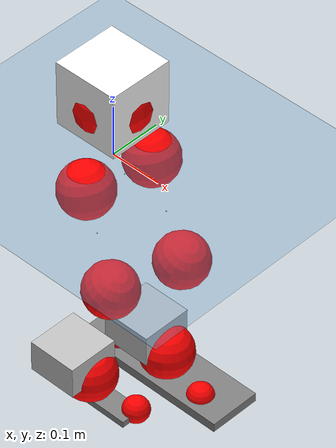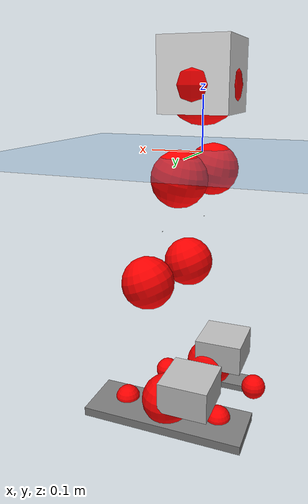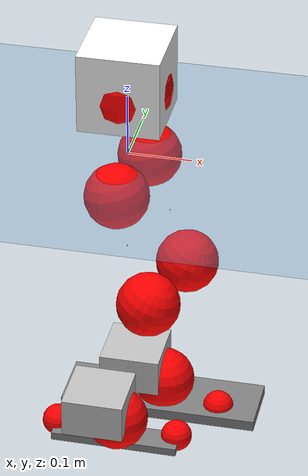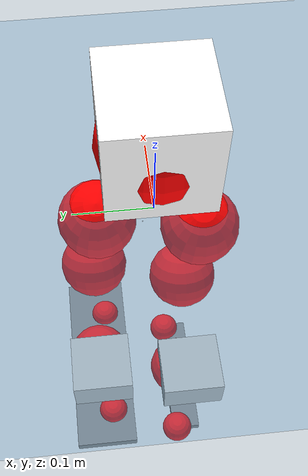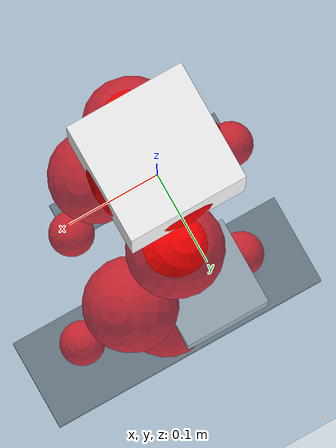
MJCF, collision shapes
<mujoco model="pi_12dof_release_v1">
  <compiler angle="radian" assetdir="assets" balanceinertia="true" inertiafromgeom="false"/>

  <option timestep="0.005" density="1.2" viscosity="2e-05"/>

  <size nkey="1"/>

  <visual>
    <quality shadowsize="8192"/>
    <map shadowclip="0.5"/>
  </visual>

  <default>
    <default class="/">
      <joint armature="0.01" damping="0.01" frictionloss="0.01"/>
      <geom contype="0" conaffinity="0" group="1" solref="-1000 -80"/>
      <site size="0.01 0.005 0.005" group="5"/>
      <general forcelimited="true" biastype="affine" gainprm="20" biasprm="0 -20 -0.5"/>
      <default class="foot">
        <geom size="0.0845 0.036 0.005" type="box" condim="6" group="4" priority="1" friction="0.9 0.2 0.2" solimp="0.015 1 0.005"/>
      </default>
      <default class="reward_collision_sphere">
        <geom group="5" rgba="1 0 0 1"/>
      </default>
    </default>
  </default>

  <asset>
    <texture type="skybox" colorspace="auto" name="//unnamed_texture_0" builtin="gradient" rgb1="0.95 0.95 0.95" rgb2="0.95 0.95 0.95" width="100" height="600"/>
    <texture type="2d" colorspace="auto" name="texplane" builtin="checker" rgb1="0.345 0.575 0.748" rgb2="0.345 0.575 0.748" markrgb="1 1 1" width="512" height="512"/>
    <material name="MatPlane" class="/" texture="texplane" texuniform="true" texrepeat="2 2" specular="0.9"/>
    <mesh name="baselink_1" class="/" file="baselink_1.STL"/>
    <mesh name="r_hip_pitch_link" class="/" file="r_hip_pitch_link.STL"/>
    <mesh name="r_hip_roll_link" class="/" file="r_hip_roll_link.STL"/>
    <mesh name="r_thigh_link" class="/" file="r_thigh_link.STL"/>
    <mesh name="r_calf_link" class="/" file="r_calf_link.STL"/>
    <mesh name="r_ankle_pitch_link" class="/" file="r_ankle_pitch_link.STL"/>
    <mesh name="r_ankle_roll_link" class="/" file="r_ankle_roll_link.STL"/>
    <mesh name="l_hip_pitch_link" class="/" file="l_hip_pitch_link.STL"/>
    <mesh name="l_hip_roll_link" class="/" file="l_hip_roll_link.STL"/>
    <mesh name="l_thigh_link" class="/" file="l_thigh_link.STL"/>
    <mesh name="l_calf_link" class="/" file="l_calf_link.STL"/>
    <mesh name="l_ankle_pitch_link" class="/" file="l_ankle_pitch_link.STL"/>
    <mesh name="l_ankle_roll_link" class="/" file="l_ankle_roll_link.STL"/>
  </asset>

  <worldbody>
    <geom name="floor" class="/" size="100 100 0.125" type="plane" group="0" material="MatPlane"/>
    <light name="toplight_shadow" class="/" pos="0 0 5" dir="0.0990148 0.0990148 -0.990148" type="directional" ambient="0.04 0.04 0.04" diffuse="0.55 0.55 0.55" specular="0.12 0.12 0.12"/>
    <light name="toplight_fill" class="/" pos="0 0 5" dir="0.0990148 0.0990148 -0.990148" type="directional" castshadow="false" ambient="0.04 0.04 0.04" diffuse="0.3 0.3 0.3" specular="0.08 0.08 0.08"/>
    <body name="trunk" pos="0.000112047 -0.00104228 0.00802677" quat="1 -6.17269e-05 9.07092e-05 6.39146e-05">
      <inertial pos="0.0126993 0.010698 0.0578921" quat="0.701304 0.00764751 0.025839 0.712353" mass="4.40782" diaginertia="0.0538222 0.00224011 0.0327234"/>
      <joint name="//unnamed_joint_0" type="free"/>
      <geom name="//unnamed_geom_1" class="/" type="mesh" density="0" rgba="1 1 1 1" mesh="baselink_1"/>
      <geom name="//unnamed_geom_2" class="/" size="0.0633478 0.0633478 0.0633478" pos="0 0 0.12439" type="box" rgba="1 1 1 1"/>
      <geom name="//unnamed_geom_3" class="reward_collision_sphere" size="0.0696826" pos="0 0 0.108841"/>
      <site name="imu" class="/" pos="0.0642932 0.00353096 -0.0534041" size="0.0126696"/>
      <camera name="track" class="/" pos="0 -1.55719 0" quat="0.707107 0.707107 0 0" mode="trackcom"/>
      <camera name="ego_camera" class="/" pos="0.110055 0 0.279878" quat="-0.5 -0.5 0.5 0.5"/>
      <body name="r_hip_pitch_link" pos="-0.00139631 -0.0139735 -0.0507348" quat="0.992353 -0.00162073 -0.123406 0.00175145">
        <inertial pos="-0.00958504 -0.0374529 -0.00094717" quat="-0.0135933 0.725148 -0.008578 0.688405" mass="0.847517" diaginertia="0.000835455 2.72189e-05 0.000713545"/>
        <joint name="r_hip_pitch_joint" class="/" pos="0 0 0" axis="-0.0438675 -0.99778 0.0501025" range="-1.72599 1.48341" armature="0.0160235" damping="0.0743196" frictionloss="0.0150395"/>
        <geom name="//unnamed_geom_4" class="/" type="mesh" density="0" rgba="0.75294 0.75294 0.75294 1" mesh="r_hip_pitch_link"/>
        <geom name="//unnamed_geom_5" class="/" size="0.000633478 0.000633478 0.000633478" type="box" rgba="0.75294 0.75294 0.75294 1"/>
        <body name="r_hip_roll_link" pos="-0.00181785 -0.0444472 0.00305938" quat="1 0.000392935 -0.000183096 -0.000156005">
          <inertial pos="-0.00720501 0.000622488 -0.105805" quat="0.704906 -0.0694323 -0.0730585 0.702103" mass="0.725798" diaginertia="0.00261055 7.99736e-05 0.00119394"/>
          <joint name="r_hip_roll_joint" class="/" pos="0 0 0" axis="-0.998003 0.0225572 -0.0590032" stiffness="0.00930964" range="0.100834 0.416802" armature="0.0157915" damping="0.00878359" frictionloss="0.00724377"/>
          <geom name="//unnamed_geom_6" class="/" type="mesh" density="0" rgba="0.75294 0.75294 0.75294 1" mesh="r_hip_roll_link"/>
          <geom name="//unnamed_geom_7" class="/" size="0.000633478 0.000633478 0.000633478" type="box" rgba="0.75294 0.75294 0.75294 1"/>
          <geom name="//unnamed_geom_8" class="reward_collision_sphere" size="0.0506782"/>
          <body name="r_thigh_link" pos="-0.00994145 0.00990988 -0.0947336" quat="0.999989 -0.0045297 -0.000559119 -0.00131512">
            <inertial pos="0.00236587 0.000704142 -0.0715847" quat="0.738435 0.674209 0.00396634 0.0118082" mass="0.244025" diaginertia="0.000912365 2.71944e-05 0.000580724"/>
            <joint name="r_thigh_joint" class="/" pos="0 0 0" axis="-0.0347665 -0.0113248 -0.999331" range="-0.378524 0.516979" armature="0.0126608" damping="0" frictionloss="0.0119802"/>
            <geom name="//unnamed_geom_9" class="/" type="mesh" density="0" rgba="0.75294 0.75294 0.75294 1" mesh="r_thigh_link"/>
            <geom name="//unnamed_geom_10" class="/" size="0.000633478 0.000633478 0.000633478" type="box" rgba="0.75294 0.75294 0.75294 1"/>
            <body name="r_calf_link" pos="0.00738426 -0.0023956 -0.108263" quat="0.947388 0.000189169 0.320087 0.000541911">
              <inertial pos="-0.0109473 -0.000380202 -0.108215" quat="0.999979 -0.00148511 0.00616585 0.00157805" mass="1.55287" diaginertia="0.0231773 0.000838516 0.00145588"/>
              <joint name="r_calf_joint" class="/" pos="0 0 0" axis="0.039143 -0.999233 0.00111007" stiffness="0.00666394" range="-1.66079 0.523402" armature="0.0174593" damping="0" frictionloss="0.0162013"/>
              <geom name="//unnamed_geom_11" class="/" type="mesh" density="0" rgba="0.75294 0.75294 0.75294 1" mesh="r_calf_link"/>
              <geom name="//unnamed_geom_12" class="/" size="0.000633478 0.000633478 0.000633478" type="box" rgba="0.75294 0.75294 0.75294 1"/>
              <geom name="//unnamed_geom_13" class="reward_collision_sphere" size="0.0506782"/>
              <body name="r_ankle_pitch_link" pos="0.00481936 -0.0114877 -0.212063" quat="0.979939 0.000684255 -0.199295 1.72893e-05">
                <inertial pos="0.00669746 0.00185085 -0.000251264" quat="0.0420199 0.728159 -0.0130489 0.683995" mass="0.456304" diaginertia="0.00232851 6.415e-05 0.00113086"/>
                <joint name="r_ankle_pitch_joint" class="/" pos="0 0 0" axis="-0.00673167 -0.99994 0.00861707" stiffness="0.0406604" range="-1.25189 0.471354" armature="0.0137208" damping="0.0625444" frictionloss="0.012865"/>
                <geom name="//unnamed_geom_14" class="/" type="mesh" density="0" rgba="0.75294 0.75294 0.75294 1" mesh="r_ankle_pitch_link"/>
                <geom name="//unnamed_geom_15" class="/" size="0.0494113 0.0506782 0.0316739" type="box" rgba="0.75294 0.75294 0.75294 1"/>
                <body name="r_ankle_roll_link" pos="0.0996424 0.014224 -0.0043667" quat="1 2.90213e-05 3.29796e-05 -1.47725e-05">
                  <inertial pos="-0.0363742 -0.000350844 -0.0340299" quat="0.547854 0.440028 0.413052 0.579327" mass="1.05665" diaginertia="0.00882155 0.000326721 0.00257157"/>
                  <joint name="r_ankle_roll_joint" class="/" pos="0 0 0" axis="-0.999977 0.0056294 -0.00380663" range="0.00151563 0.0648705" armature="0.010638" damping="0.064257" frictionloss="0.00613907"/>
                  <geom name="//unnamed_geom_16" class="/" type="mesh" density="0" rgba="0.75294 0.75294 0.75294 1" mesh="r_ankle_roll_link"/>
                  <geom name="//unnamed_geom_17" class="/" type="mesh" rgba="0.75294 0.75294 0.75294 1" mesh="r_ankle_roll_link"/>
                  <geom name="right_foot" class="foot" size="0.103115 0.0230823 0.0066047" pos="-0.0748371 0 -0.0684146"/>
                  <geom name="//unnamed_geom_19" class="reward_collision_sphere" size="0.0506782" pos="-0.0733697 0 -0.0310975"/>
                  <geom name="//unnamed_geom_20" class="reward_collision_sphere" size="0.0253391" pos="0.0220109 0.0155719 -0.062195"/>
                  <geom name="//unnamed_geom_21" class="reward_collision_sphere" size="0.0253391" pos="-0.176087 0.0155719 -0.062195"/>
                  <site name="right_foot" class="foot" pos="-0.0748371 0 -0.0684146" size="0.0126696"/>
                </body>
              </body>
            </body>
          </body>
        </body>
      </body>
      <body name="l_hip_pitch_link" pos="0.012553 0.0133183 -0.0513518" quat="0.992201 -0.00086119 -0.124643 0.00118451">
        <inertial pos="-0.00381627 0.0311588 0.000168319" quat="-0.0260136 0.714546 0.0589844 0.696612" mass="0.795517" diaginertia="0.00102997 2.86483e-05 0.00116915"/>
        <joint name="l_hip_pitch_joint" class="/" pos="0 0 0" axis="-0.0371694 0.999021 -0.0239882" stiffness="0.0141209" range="-1.02726 1.73156" armature="0.00513664" damping="0.0648961" frictionloss="0.0135456"/>
        <geom name="//unnamed_geom_22" class="/" type="mesh" density="0" rgba="0.75294 0.75294 0.75294 1" mesh="l_hip_pitch_link"/>
        <geom name="//unnamed_geom_23" class="/" size="0.000633478 0.000633478 0.000633478" type="box" rgba="0.75294 0.75294 0.75294 1"/>
        <body name="l_hip_roll_link" pos="0.00736499 0.0577824 0.00225907" quat="1 0.000189263 -0.000147214 0.000238533">
          <inertial pos="-0.000631521 -0.00934594 -0.0936835" quat="0.699485 -0.0756812 -0.0767016 0.706478" mass="0.784001" diaginertia="0.00224464 8.58971e-05 0.00111711"/>
          <joint name="l_hip_roll_joint" class="/" pos="0 0 0" axis="-0.998028 0.0296544 -0.0553313" range="-0.753397 -0.0329197" armature="0.0119842" damping="0.0229955" frictionloss="0.0194305"/>
          <geom name="//unnamed_geom_24" class="/" type="mesh" density="0" rgba="0.75294 0.75294 0.75294 1" mesh="l_hip_roll_link"/>
          <geom name="//unnamed_geom_25" class="/" size="0.000633478 0.000633478 0.000633478" type="box" rgba="0.75294 0.75294 0.75294 1"/>
          <geom name="//unnamed_geom_26" class="reward_collision_sphere" size="0.0506782"/>
          <body name="l_thigh_link" pos="0.00748796 3.95379e-05 -0.103637" quat="0.999998 -0.000198617 0.0017239 -0.00132971">
            <inertial pos="0.000356249 0.00172554 -0.0755861" quat="0.704412 0.707691 0.0424678 -0.0342751" mass="0.232924" diaginertia="0.000870959 2.74222e-05 0.000622534"/>
            <joint name="l_thigh_joint" class="/" pos="0 0 0" axis="0.0201424 -0.0069721 -0.999773" range="-0.465505 0.153623" armature="0.00929059" damping="0.0559715" frictionloss="0.00808834"/>
            <geom name="//unnamed_geom_27" class="/" type="mesh" density="0" rgba="0.75294 0.75294 0.75294 1" mesh="l_thigh_link"/>
            <geom name="//unnamed_geom_28" class="/" size="0.000633478 0.000633478 0.000633478" type="box" rgba="0.75294 0.75294 0.75294 1"/>
            <body name="l_calf_link" pos="0.000789215 0.0112146 -0.10429" quat="0.948824 -0.00155519 0.315795 -0.00208617">
              <inertial pos="0.0118396 0.00144624 -0.118762" quat="0.999964 -0.0054188 0.00420492 -0.00508208" mass="1.77856" diaginertia="0.0261181 0.00106767 0.00195993"/>
              <joint name="l_calf_joint" class="/" pos="0 0 0" axis="0.0169452 0.999785 -0.0119351" stiffness="0.0165525" range="-0.732454 1.92736" armature="0.0189557" damping="0.00357501" frictionloss="0.0195141"/>
              <geom name="//unnamed_geom_29" class="/" type="mesh" density="0" rgba="0.75294 0.75294 0.75294 1" mesh="l_calf_link"/>
              <geom name="//unnamed_geom_30" class="/" size="0.000633478 0.000633478 0.000633478" type="box" rgba="0.75294 0.75294 0.75294 1"/>
              <geom name="//unnamed_geom_31" class="reward_collision_sphere" size="0.0506782"/>
              <body name="l_ankle_pitch_link" pos="0.00114747 0.00542146 -0.229109" quat="0.980063 -7.96603e-05 -0.198689 -7.44327e-05">
                <inertial pos="-0.00135065 0.00131841 -0.00144601" quat="-0.00190114 0.706186 0.00196197 0.708021" mass="0.482553" diaginertia="0.00275585 7.50665e-05 0.00124081"/>
                <joint name="l_ankle_pitch_joint" class="/" pos="0 0 0" axis="-0.0149744 0.998963 -0.042996" range="-0.500708 1.30566" armature="0.0119793" damping="0.0535127" frictionloss="0.00388392"/>
                <geom name="//unnamed_geom_32" class="/" type="mesh" density="0" rgba="0.75294 0.75294 0.75294 1" mesh="l_ankle_pitch_link"/>
                <geom name="//unnamed_geom_33" class="/" size="0.0494113 0.0506782 0.0316739" type="box" rgba="0.75294 0.75294 0.75294 1"/>
                <body name="l_ankle_roll_link" pos="0.121529 0.00181429 -0.00184601" quat="0.999996 -0.00271656 -0.000409939 0.000250369">
                  <inertial pos="-0.0306969 -0.00192855 -0.022041" quat="0.528486 0.469485 0.431255 0.56063" mass="1.05408" diaginertia="0.00834588 0.000260039 0.00261551"/>
                  <joint name="l_ankle_roll_joint" class="/" pos="0 0 0" axis="-0.999996 0.0024602 -0.00148005" range="-0.183727 0.16519" armature="0.0147717" damping="0.00823937" frictionloss="0.0204154"/>
                  <geom name="//unnamed_geom_34" class="/" type="mesh" density="0" rgba="0.75294 0.75294 0.75294 1" mesh="l_ankle_roll_link"/>
                  <geom name="//unnamed_geom_35" class="/" type="mesh" rgba="0.75294 0.75294 0.75294 1" mesh="l_ankle_roll_link"/>
                  <geom name="left_foot" class="foot" size="0.162859 0.0520847 0.00904364" pos="-0.0748371 0 -0.0684146"/>
                  <geom name="//unnamed_geom_37" class="reward_collision_sphere" size="0.0506782" pos="-0.0733697 0 -0.0310975"/>
                  <geom name="//unnamed_geom_38" class="reward_collision_sphere" size="0.0253391" pos="0.0220109 -0.0155719 -0.062195"/>
                  <geom name="//unnamed_geom_39" class="reward_collision_sphere" size="0.0253391" pos="-0.176087 -0.0155719 -0.062195"/>
                  <site name="left_foot" class="foot" pos="-0.0748371 0 -0.0684146" size="0.0126696"/>
                </body>
              </body>
            </body>
          </body>
        </body>
      </body>
    </body>
  </worldbody>

  <contact>
    <pair class="/" geom1="floor" geom2="right_foot" name="//unnamed_contact_1"/>
    <pair class="/" geom1="floor" geom2="left_foot" name="//unnamed_contact_0"/>
  </contact>

  <actuator>
    <general name="r_hip_pitch_joint" class="/" joint="r_hip_pitch_joint" forcerange="-22.7778 22.7778" gainprm="26.0039" biasprm="0 -26.0039 -0.467478"/>
    <general name="r_hip_roll_joint" class="/" joint="r_hip_roll_joint" forcerange="-36.5257 36.5257" gainprm="26.0039" biasprm="0 -26.0039 -0.467478"/>
    <general name="r_thigh_joint" class="/" joint="r_thigh_joint" forcerange="-17.9214 17.9214" gainprm="26.0039" biasprm="0 -26.0039 -0.467478"/>
    <general name="r_calf_joint" class="/" joint="r_calf_joint" forcerange="-25.0976 25.0976" gainprm="26.0039" biasprm="0 -26.0039 -0.467478"/>
    <general name="r_ankle_pitch_joint" class="/" joint="r_ankle_pitch_joint" forcerange="-36.2442 36.2442" gainprm="26.0039" biasprm="0 -26.0039 -0.467478"/>
    <general name="r_ankle_roll_joint" class="/" joint="r_ankle_roll_joint" forcerange="-25.274 25.274" gainprm="26.0039" biasprm="0 -26.0039 -0.467478"/>
    <general name="l_hip_pitch_joint" class="/" joint="l_hip_pitch_joint" forcerange="-27.7591 27.7591" gainprm="26.0039" biasprm="0 -26.0039 -0.467478"/>
    <general name="l_hip_roll_joint" class="/" joint="l_hip_roll_joint" forcerange="-33.1146 33.1146" gainprm="26.0039" biasprm="0 -26.0039 -0.467478"/>
    <general name="l_thigh_joint" class="/" joint="l_thigh_joint" forcerange="-29.0916 29.0916" gainprm="26.0039" biasprm="0 -26.0039 -0.467478"/>
    <general name="l_calf_joint" class="/" joint="l_calf_joint" forcerange="-33.6826 33.6826" gainprm="26.0039" biasprm="0 -26.0039 -0.467478"/>
    <general name="l_ankle_pitch_joint" class="/" joint="l_ankle_pitch_joint" forcerange="-21.4447 21.4447" gainprm="26.0039" biasprm="0 -26.0039 -0.467478"/>
    <general name="l_ankle_roll_joint" class="/" joint="l_ankle_roll_joint" forcerange="-37.0567 37.0567" gainprm="26.0039" biasprm="0 -26.0039 -0.467478"/>
  </actuator>

  <sensor>
    <gyro site="imu" name="imu_angular_velocity"/>
    <velocimeter site="imu" name="imu_linear_velocity"/>
    <framelinvel objtype="site" objname="left_foot" name="left_foot_global_linear_velocity"/>
    <framelinvel objtype="site" objname="right_foot" name="right_foot_global_linear_velocity"/>
  </sensor>

  <keyframe>
    <key name="home" qpos="0 0 0.291 1 0 0 0 0.4 0 0 -0.8 0.4 0 -0.4 0 0 0.8 -0.4 0"/>
  </keyframe>
</mujoco>
